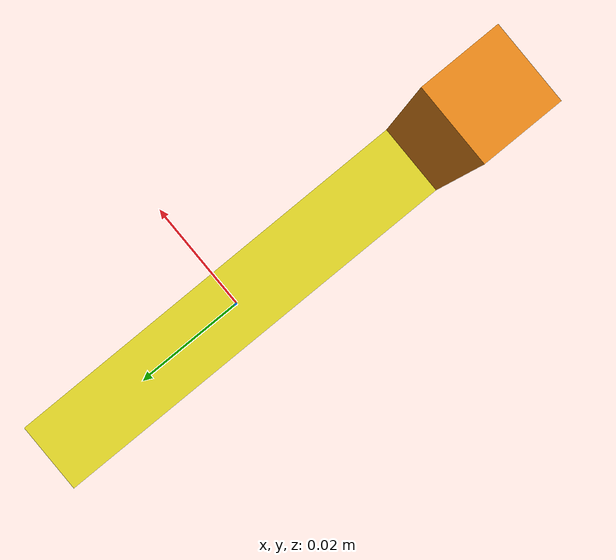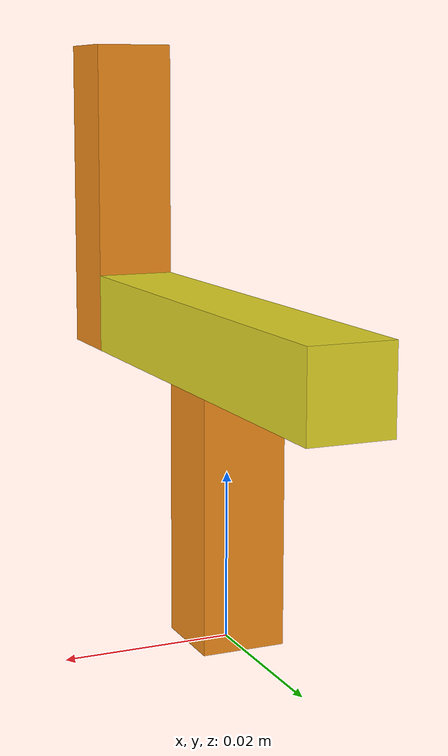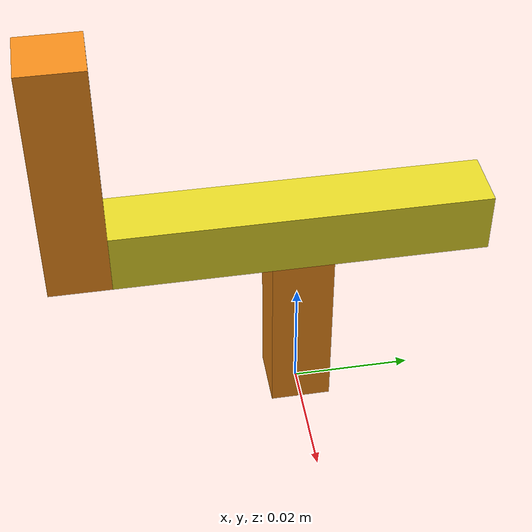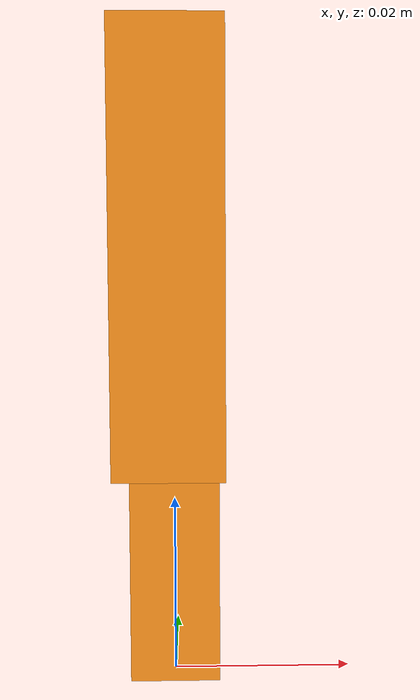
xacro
<?xml version="1.0"?>
<!-- Revolute-Revolute Manipulator -->
<!--
Copied and modified from ROS1 example -
https://github.com/ros-simulation/gazebo_ros_demos/blob/kinetic-devel/rrbot_description/urdf/rrbot.xacro
-->
<robot xmlns:xacro="http://www.ros.org/wiki/xacro" name="2dof_robot">
  <xacro:arg name="prefix" default="" />

  <!-- Import RRBot macro -->
  <xacro:include filename="$(find servo_control)/urdf/rrbot_description.urdf.xacro" />

  <!-- Import Rviz colors -->
  <xacro:include filename="$(find servo_control)/urdf/rrbot.materials.xacro" />

  <!-- Import RRBot ros2_control description -->
  <xacro:include filename="$(find servo_control)/ros2_control/rrbot.ros2_control.xacro" />

  <!-- Used for fixing robot -->
  <link name="world"/>

  <xacro:rrbot parent="world" prefix="$(arg prefix)">
    <origin xyz="0 0 0" rpy="0 0 0" />
  </xacro:rrbot>

  <xacro:rrbot_ros2_control
    name="RRBot" prefix="$(arg prefix)" />

</robot>

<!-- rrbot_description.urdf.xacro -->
<robot xmlns:xacro="http://www.ros.org/wiki/xacro">

  <xacro:macro name="rrbot" params="parent prefix *origin">

  <!-- Constants for robot dimensions -->
  <xacro:property name="mass" value="0.01" /> <!-- arbitrary value for mass -->
  <xacro:property name="width" value="0.01" /> <!-- Square dimensions (widthxwidth) of beams -->
  <xacro:property name="height1" value="0.03" /> <!-- Link 1 -->
  <xacro:property name="height2" value="0.06" /> <!-- Link 2 -->
  <xacro:property name="height3" value="0.04" /> <!-- Link 3 -->
  <xacro:property name="axel_offset" value="0.005" /> <!-- Space btw top of beam and the each joint -->

  <joint name="${prefix}base_joint" type="fixed">
    <xacro:insert_block name="origin" />
    <parent link="${parent}"/>
    <child link="${prefix}base_link" />
  </joint>

  <!-- Base Link -->
  <link name="${prefix}base_link">
    <collision>
      <origin xyz="0 0 ${height1/2}" rpy="0 0 0"/>
      <geometry>
        <box size="${width} ${width} ${height1}"/>
      </geometry>
    </collision>

    <visual>
      <origin xyz="0 0 ${height1/2}" rpy="0 0 0"/>
      <geometry>
        <box size="${width} ${width} ${height1}"/>
      </geometry>
      <material name="orange"/>
    </visual>

    <inertial>
      <origin xyz="0 0 ${height1/2}" rpy="0 0 0"/>
      <mass value="${mass}"/>
      <inertia
        ixx="${mass / 12.0 * (width*width + height1*height1)}" ixy="0.0" ixz="0.0"
        iyy="${mass / 12.0 * (height1*height1 + width*width)}" iyz="0.0"
        izz="${mass / 12.0 * (width*width + width*width)}"/>
    </inertial>
  </link>

  <joint name="${prefix}joint1" type="continuous">
    <parent link="${prefix}base_link"/>
    <child link="${prefix}link1"/>
    <origin xyz="0 0 ${height1+axel_offset}" rpy="0 0 0"/>
    <axis xyz="0 0 1"/>
    <dynamics damping="0.7"/>
    <limit effort="100" velocity="1.0"/>
  </joint>

  <!-- Middle Link -->
  <link name="${prefix}link1">
    <collision>
      <origin xyz="0 0 0" rpy="0 0 0"/>
      <geometry>
        <box size="${width} ${height2} ${width}"/>
      </geometry>
    </collision>

    <visual>
      <origin xyz="0 0 0" rpy="0 0 0"/>
      <geometry>
        <box size="${width} ${height2} ${width}"/>
      </geometry>
      <material name="yellow"/>
    </visual>

    <inertial>
      <origin xyz="0 0 ${height2/2 - axel_offset}" rpy="0 0 0"/>
      <mass value="${mass}"/>
      <inertia
        ixx="${mass / 12.0 * (width*width + height2*height2)}" ixy="0.0" ixz="0.0"
        iyy="${mass / 12.0 * (width*width + width*width)}" iyz="0.0"
        izz="${mass / 12.0 * (width*width + height2*height2)}"/>
    </inertial>
  </link>

  <joint name="${prefix}joint2" type="continuous">
    <parent link="${prefix}link1"/>
    <child link="${prefix}link2"/>
    <origin xyz="0 ${-height2/2 - axel_offset} 0 " rpy="0 0 0"/>
    <axis xyz="0 1 0"/>
    <dynamics damping="0.7"/>
    <limit effort="100" velocity="1.0"/>
  </joint>

  <!-- Top Link -->
  <link name="${prefix}link2">
    <collision>
      <origin xyz="0 0 ${height3/2 - axel_offset}" rpy="0 0 0"/>
      <geometry>
        <box size="${width} ${width} ${height3}"/>
      </geometry>
    </collision>

    <visual>
      <origin xyz="0 0 ${height3/2 - axel_offset}" rpy="0 0 0"/>
      <geometry>
        <box size="${width} ${width} ${height3}"/>
      </geometry>
      <material name="orange"/>
    </visual>

    <inertial>
      <origin xyz="0 0 ${height3/2 - axel_offset}" rpy="0 0 0"/>
      <mass value="${mass}"/>
      <inertia
        ixx="${mass / 12.0 * (width*width + height3*height3)}" ixy="0.0" ixz="0.0"
        iyy="${mass / 12.0 * (height3*height3 + width*width)}" iyz="0.0"
        izz="${mass / 12.0 * (width*width + width*width)}"/>
    </inertial>
  </link>

  <joint name="${prefix}tool_joint" type="fixed">
    <origin xyz="0 0 0.01" rpy="0 0 0" />
    <parent link="${prefix}link2"/>
    <child link="${prefix}tool_link" />
  </joint>

  <!-- Tool Link -->
  <link name="${prefix}tool_link">
  </link>

  </xacro:macro>

</robot>
